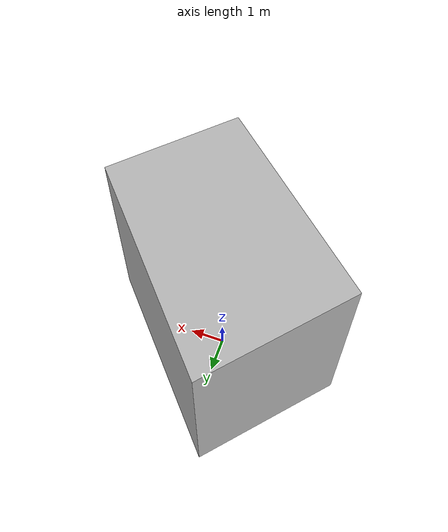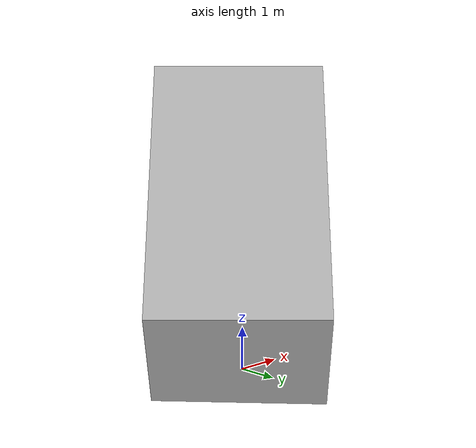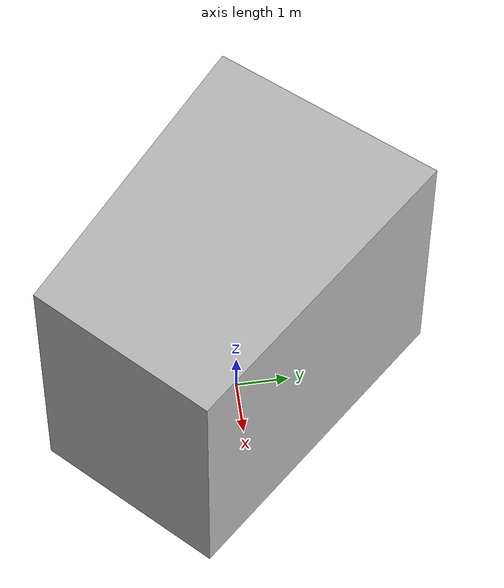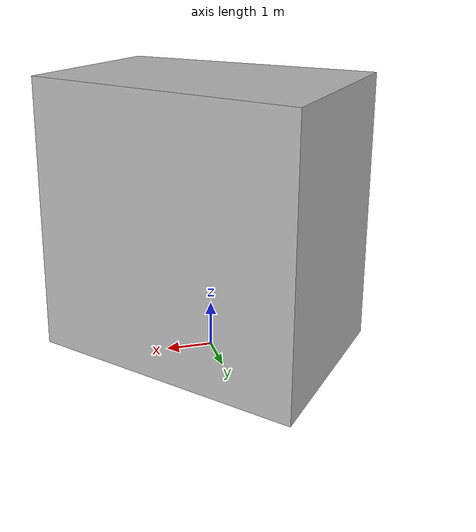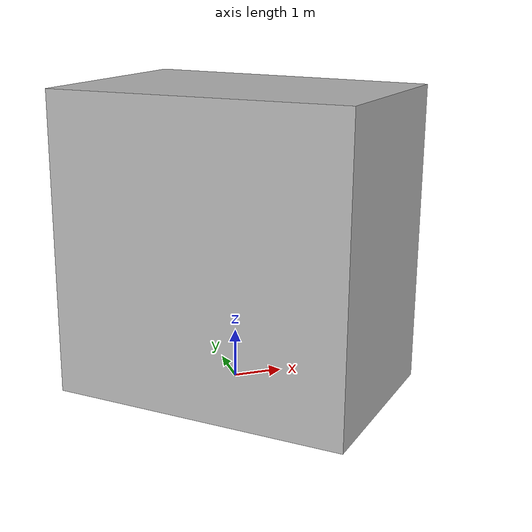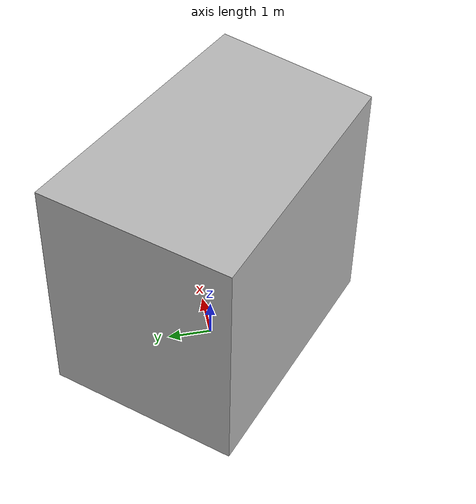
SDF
<?xml version="1.0" ?>
<sdf version="1.7">
  <model name="building_1837_assumed_a_casa">
    <static>true</static>
    <link name="building_link">
      <visual name="building_visual">
        <geometry>
          <mesh>
            <uri>model://building_1837_assumed_a_casa/meshes/construction_1837_assumed_A_Casa_h6m.obj</uri>
          </mesh>
        </geometry>
      </visual>
    <collision name="building_collision">
      <geometry>
        <mesh>
          <uri>model://building_1837_assumed_a_casa/meshes/construction_1837_assumed_A_Casa_h6m.obj</uri>
        </mesh>
      </geometry>
    </collision>
    </link>
  </model>
</sdf>
